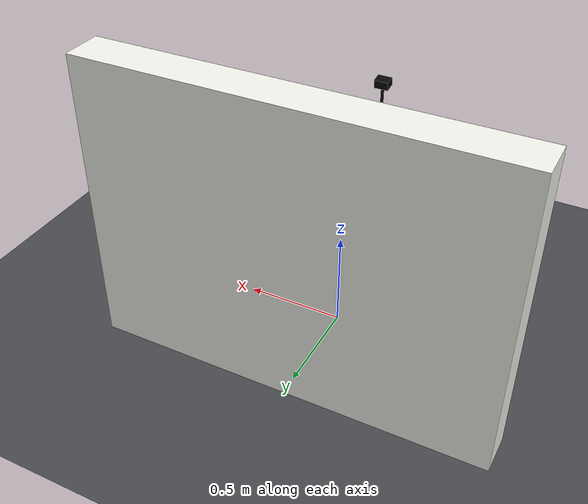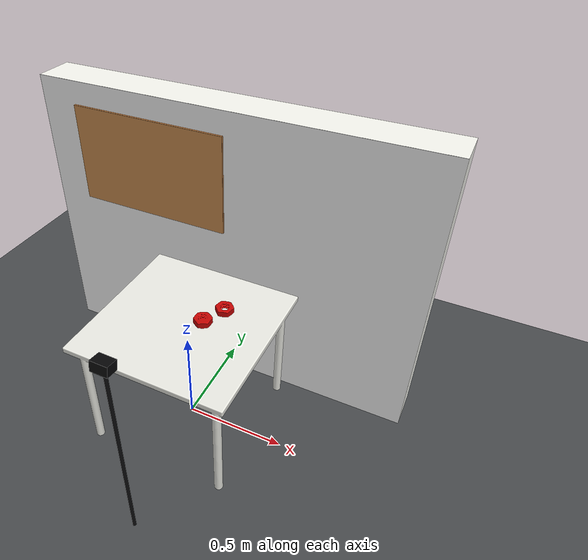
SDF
<sdf version="1.11">
 <world name="so101_dataset_world">
  <physics name="1ms" type="ignored">
   <max_step_size>0.001</max_step_size>
   <real_time_factor>1.0</real_time_factor>
   <real_time_update_rate>1000</real_time_update_rate>
  </physics>
  <plugin filename="gz-sim-physics-system" name="gz::sim::systems::Physics"/>
  <plugin filename="gz-sim-user-commands-system" name="gz::sim::systems::UserCommands"/>
  <plugin filename="gz-sim-scene-broadcaster-system" name="gz::sim::systems::SceneBroadcaster"/>
  <plugin filename="gz-sim-sensors-system" name="gz::sim::systems::Sensors">
   <render_engine>ogre2</render_engine>
  </plugin>
  <scene>
   <ambient>0.55 0.55 0.55 1</ambient>
   <background>0.80 0.82 0.84 1</background>
   <shadows>true</shadows>
   <grid>true</grid>
  </scene>
  <light name="ceiling_softbox" type="directional">
   <pose>0 -0.2 2.4 0 0 0</pose>
   <intensity>1.25</intensity>
   <direction>0.05 0.10 -1.0</direction>
   <diffuse>0.98 0.96 0.92 1</diffuse>
   <specular>0.18 0.18 0.18 1</specular>
  </light>
  <light name="camera_fill" type="point">
   <pose>-0.45 -0.65 1.35 0 0 0</pose>
   <cast_shadows>false</cast_shadows>
   <intensity>0.65</intensity>
   <diffuse>0.82 0.86 0.94 1</diffuse>
   <specular>0.08 0.08 0.08 1</specular>
   <attenuation>
    <range>4</range>
    <linear>0.22</linear>
    <constant>0.7</constant>
    <quadratic>0.02</quadratic>
   </attenuation>
  </light>
  <model name="floor">
   <static>true</static>
   <link name="floor_link">
    <collision name="collision">
     <geometry><plane><normal>0 0 1</normal><size>6 6</size></plane></geometry>
    </collision>
    <visual name="visual">
     <geometry><plane><normal>0 0 1</normal><size>6 6</size></plane></geometry>
     <material>
      <ambient>0.20 0.21 0.22 1</ambient>
      <diffuse>0.28 0.29 0.30 1</diffuse>
      <pbr><metal><roughness>0.85</roughness><metalness>0.0</metalness></metal></pbr>
     </material>
    </visual>
   </link>
  </model>
  <include><uri>model://training_workspace</uri><name>training_workspace</name></include>
  <model name="red_hex_cap">
   <pose>0.07708498 0.02392881 0.631 0 0 -1.06950760</pose>
   <static>true</static>
   <link name="cap_link">
    <velocity_decay><linear>0.15</linear><angular>0.95</angular></velocity_decay>
    <inertial>
     <pose>0 0 0.015 0 0 0</pose>
     <mass>0.050</mass>
     <inertia><ixx>2.90e-5</ixx><iyy>2.90e-5</iyy><izz>5.10e-5</izz></inertia>
    </inertial>
    <collision name="collision">
     <pose>0 0 0.015 0 0 0</pose>
     <geometry><cylinder><radius>0.045</radius><length>0.030</length></cylinder></geometry>
     <surface>
      <friction>
       <ode><mu>1.2</mu><mu2>1.2</mu2></ode>
       <bullet><friction>1.2</friction><friction2>1.2</friction2><rolling_friction>0.20</rolling_friction></bullet>
       <torsional>
        <coefficient>2.0</coefficient>
        <use_patch_radius>true</use_patch_radius>
        <patch_radius>0.035</patch_radius>
       </torsional>
      </friction>
      <contact><collide_without_contact>false</collide_without_contact></contact>
     </surface>
    </collision>
    <visual name="red_cap_mesh">
     <pose>0.085 0 0 0 0 0</pose>
     <geometry>
      <mesh><uri>model://stacking_parts/meshes/50mm_hex_cap.stl</uri><scale>0.001 0.001 0.001</scale></mesh>
     </geometry>
     <material>
      <ambient>0.45 0.01 0.008 1</ambient>
      <diffuse>0.78 0.018 0.012 1</diffuse>
      <specular>0.12 0.05 0.05 1</specular>
      <pbr><metal><roughness>0.52</roughness><metalness>0.0</metalness></metal></pbr>
     </material>
    </visual>
   </link>
  </model>
  <model name="red_hex_nut">
   <pose>0.13052899 0.13765612 0.631 0 0 2.89777589</pose>
   <static>false</static>
   <link name="nut_link">
    <velocity_decay><linear>0.15</linear><angular>0.95</angular></velocity_decay>
    <inertial>
     <pose>0 0 0.015 0 0 0</pose>
     <mass>0.045</mass>
     <inertia><ixx>2.60e-5</ixx><iyy>2.60e-5</iyy><izz>4.60e-5</izz></inertia>
    </inertial>
    <collision name="rim_0">
     <pose>0.034 0 0.015 0 0 0</pose>
     <geometry><box><size>0.016 0.042 0.030</size></box></geometry>
     <surface>
      <friction>
       <ode><mu>1.2</mu><mu2>1.2</mu2></ode>
       <bullet><friction>1.2</friction><friction2>1.2</friction2><rolling_friction>0.20</rolling_friction></bullet>
       <torsional>
        <coefficient>2.0</coefficient>
        <use_patch_radius>true</use_patch_radius>
        <patch_radius>0.035</patch_radius>
       </torsional>
      </friction>
      <contact><collide_without_contact>false</collide_without_contact></contact>
     </surface>
    </collision>
    <collision name="rim_1">
     <pose>0.017 0.029445 0.015 0 0 1.0472</pose>
     <geometry><box><size>0.016 0.042 0.030</size></box></geometry>
    </collision>
    <collision name="rim_2">
     <pose>-0.017 0.029445 0.015 0 0 2.0944</pose>
     <geometry><box><size>0.016 0.042 0.030</size></box></geometry>
    </collision>
    <collision name="rim_3">
     <pose>-0.034 0 0.015 0 0 3.14159</pose>
     <geometry><box><size>0.016 0.042 0.030</size></box></geometry>
    </collision>
    <collision name="rim_4">
     <pose>-0.017 -0.029445 0.015 0 0 4.18879</pose>
     <geometry><box><size>0.016 0.042 0.030</size></box></geometry>
    </collision>
    <collision name="rim_5">
     <pose>0.017 -0.029445 0.015 0 0 5.23599</pose>
     <geometry><box><size>0.016 0.042 0.030</size></box></geometry>
    </collision>
    <visual name="red_nut_mesh">
     <pose>-0.085 0 0 0 0 0</pose>
     <geometry>
      <mesh><uri>model://stacking_parts/meshes/50mm_nut.stl</uri><scale>0.001 0.001 0.001</scale></mesh>
     </geometry>
     <material>
      <ambient>0.45 0.01 0.008 1</ambient>
      <diffuse>0.78 0.018 0.012 1</diffuse>
      <specular>0.12 0.05 0.05 1</specular>
      <pbr><metal><roughness>0.52</roughness><metalness>0.0</metalness></metal></pbr>
     </material>
    </visual>
   </link>
  </model>
 </world>
</sdf>

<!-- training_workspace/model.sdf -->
<sdf version="1.11">
  <model name="training_workspace">
    <static>true</static>

    <link name="furniture">
      <collision name="table_collision">
        <pose>0 0 0.615 0 0 0</pose>
        <geometry>
          <box><size>0.80 0.80 0.030</size></box>
        </geometry>
      </collision>
      <visual name="white_table">
        <pose>0 0 0.60 0 0 0</pose>
        <geometry>
          <mesh><uri>meshes/table.stl</uri></mesh>
        </geometry>
        <material>
          <ambient>0.83 0.83 0.80 1</ambient>
          <diffuse>0.92 0.92 0.89 1</diffuse>
          <specular>0.12 0.12 0.12 1</specular>
          <pbr><metal><roughness>0.72</roughness><metalness>0.0</metalness></metal></pbr>
        </material>
      </visual>

      <collision name="wall_collision">
        <pose>0 0.60 0.75 0 0 0</pose>
        <geometry>
          <mesh><uri>meshes/wall.stl</uri></mesh>
        </geometry>
      </collision>
      <visual name="wall_mesh">
        <pose>0 0.60 0.75 0 0 0</pose>
        <geometry>
          <mesh><uri>meshes/wall.stl</uri></mesh>
        </geometry>
        <material>
          <ambient>0.88 0.88 0.85 1</ambient>
          <diffuse>0.96 0.96 0.93 1</diffuse>
          <pbr><metal><roughness>0.90</roughness><metalness>0.0</metalness></metal></pbr>
        </material>
      </visual>
      <!-- A shallow image plane reproduces the wall appearance seen by the cameras. -->
      <visual name="wall_texture">
        <pose>0 0.399 0.75 0 0 0</pose>
        <geometry>
          <plane><normal>0 -1 0</normal><size>2.0 1.5</size></plane>
        </geometry>
        <material>
          <ambient>1 1 1 1</ambient>
          <diffuse>1 1 1 1</diffuse>
          <specular>0.02 0.02 0.02 1</specular>
          <pbr>
            <metal>
              <albedo_map>model://training_workspace/materials/textures/wall.png</albedo_map>
              <roughness>0.95</roughness>
              <metalness>0.0</metalness>
            </metal>
          </pbr>
        </material>
      </visual>

      <collision name="board_collision">
        <pose>-0.40 0.388 1.14 0 0 0</pose>
        <geometry>
          <mesh><uri>meshes/board.stl</uri></mesh>
        </geometry>
      </collision>
      <visual name="board_mesh">
        <pose>-0.40 0.388 1.14 0 0 0</pose>
        <geometry>
          <mesh><uri>meshes/board.stl</uri></mesh>
        </geometry>
        <material>
          <ambient>0.45 0.27 0.12 1</ambient>
          <diffuse>0.65 0.42 0.22 1</diffuse>
          <pbr><metal><roughness>0.90</roughness><metalness>0.0</metalness></metal></pbr>
        </material>
      </visual>
      <visual name="cork_texture">
        <pose>-0.40 0.377 1.14 0 0 0</pose>
        <geometry>
          <plane><normal>0 -1 0</normal><size>0.80 0.50</size></plane>
        </geometry>
        <material>
          <ambient>0.72 0.48 0.25 1</ambient>
          <diffuse>0.82 0.57 0.32 1</diffuse>
          <specular>0.01 0.01 0.01 1</specular>
          <pbr>
            <metal>
              <albedo_map>model://training_workspace/materials/textures/board.png</albedo_map>
              <roughness>0.92</roughness>
              <metalness>0.0</metalness>
            </metal>
          </pbr>
        </material>
      </visual>

      <!-- Fixed UGREEN-style external camera used as observation.images.left. -->
      <visual name="left_camera_body">
        <pose>0.10 -0.68 1.02 0 0.18 1.57079632679</pose>
        <geometry><box><size>0.055 0.075 0.045</size></box></geometry>
        <material>
          <ambient>0.015 0.015 0.020 1</ambient>
          <diffuse>0.025 0.025 0.030 1</diffuse>
          <pbr><metal><roughness>0.4</roughness><metalness>0.15</metalness></metal></pbr>
        </material>
      </visual>
      <visual name="left_camera_stand">
        <pose>0.10 -0.68 0.505 0 0 0</pose>
        <geometry><cylinder><radius>0.008</radius><length>0.99</length></cylinder></geometry>
        <material><ambient>0.03 0.03 0.035 1</ambient><diffuse>0.04 0.04 0.045 1</diffuse></material>
      </visual>

      <sensor name="left_camera" type="camera">
        <pose>0.10 -0.68 1.02 0 0.18 1.57079632679</pose>
        <always_on>true</always_on>
        <update_rate>30</update_rate>
        <topic>/so101/camera/left/image</topic>
        <camera name="left">
          <horizontal_fov>1.0471975512</horizontal_fov>
          <image><width>640</width><height>480</height><format>R8G8B8</format></image>
          <clip><near>0.03</near><far>5.0</far></clip>
          <noise><type>gaussian</type><mean>0.0</mean><stddev>0.002</stddev></noise>
        </camera>
      </sensor>
    </link>
  </model>
</sdf>
